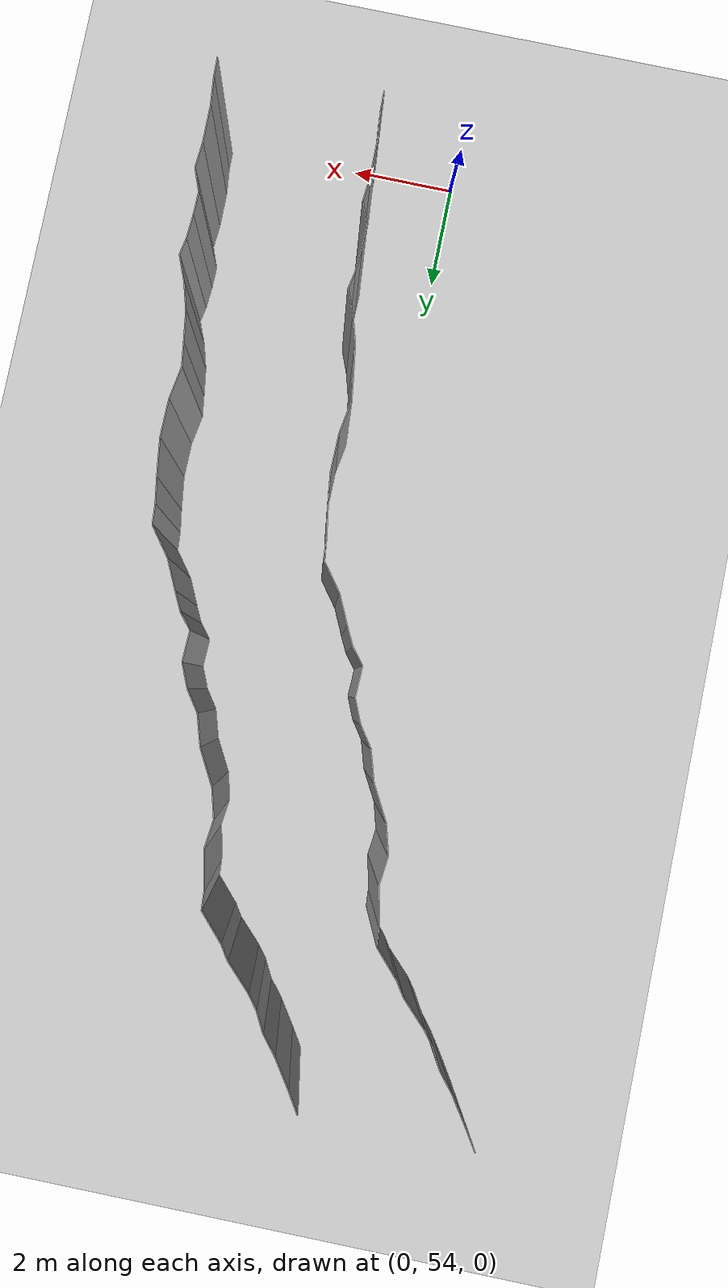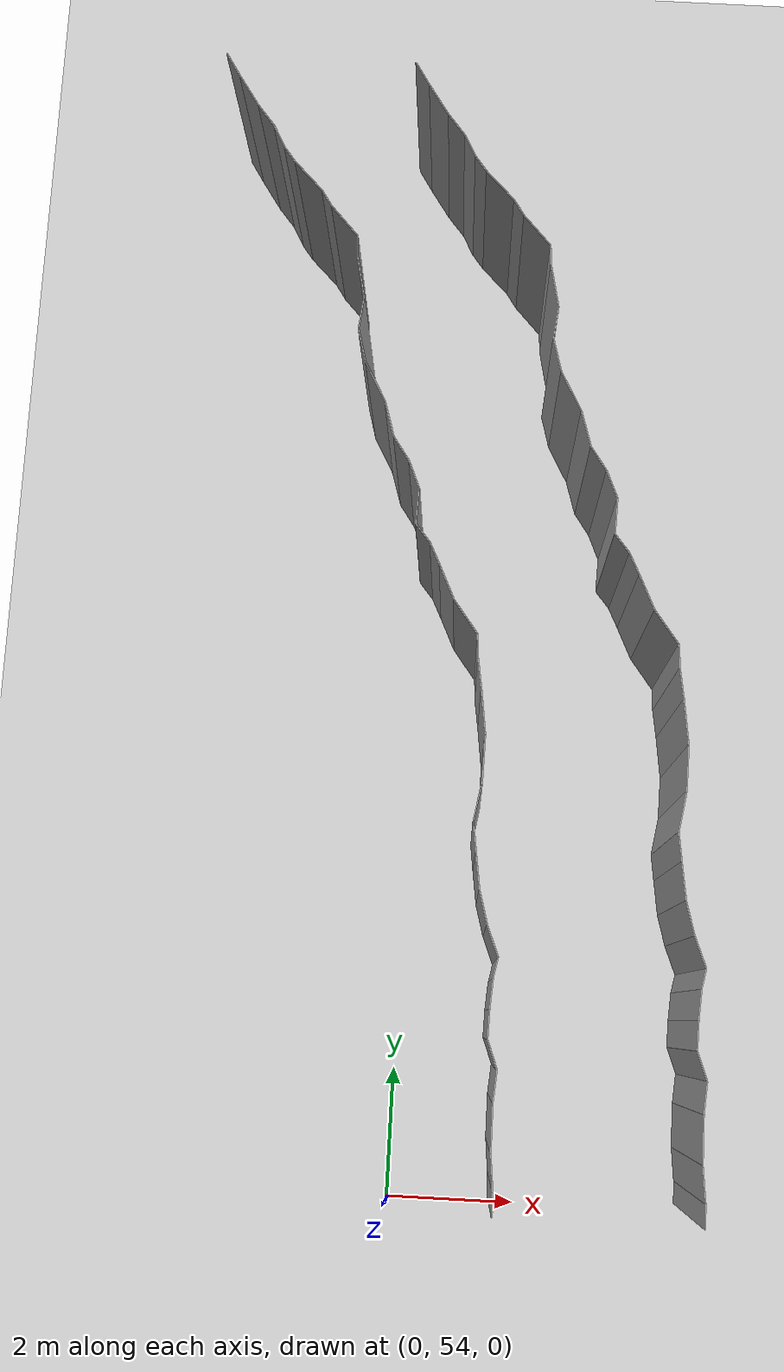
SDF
<sdf version="1.6">
 <world name="default">
  <model name="ground_plane">
   <static>1</static>
   <link name="link">
    <collision name="collision">
     <geometry><plane><normal>0 0 1</normal><size>200 200</size></plane></geometry>
     <surface><friction><ode><mu>100</mu><mu2>50</mu2></ode></friction></surface>
    </collision>
    <visual name="visual">
     <cast_shadows>0</cast_shadows>
     <geometry><plane><normal>0 0 1</normal><size>200 200</size></plane></geometry>
     <material>
      <script><uri>file://media/materials/scripts/gazebo.material</uri><name>Gazebo/Grey</name></script>
     </material>
    </visual>
   </link>
   <pose>0 100 0 0 -0 0</pose>
  </model>
  <model name="wall_224">
   <static>1</static>
   <pose>1.6036851124382525 54.291780807784306 2 0 0 0.021064245430940393</pose>
   <link name="link">
    <collision name="collision"><geometry><box><size>0.02 0.352681387087 4</size></box></geometry></collision>
    <visual name="visual">
     <material>
      <script><name>Gazebo/Grey</name><uri>file://media/materials/scripts/gazebo.material</uri></script>
     </material>
     <geometry><box><size>0.02 0.352681387087 4</size></box></geometry>
    </visual>
   </link>
  </model>
  <model name="wall_225">
   <static>1</static>
   <pose>4.603685112438253 54.291780807784306 2 0 0 0.021064245430940393</pose>
   <link name="link">
    <collision name="collision"><geometry><box><size>0.02 0.352681387087 4</size></box></geometry></collision>
    <visual name="visual">
     <material>
      <script><name>Gazebo/Grey</name><uri>file://media/materials/scripts/gazebo.material</uri></script>
     </material>
     <geometry><box><size>0.02 0.352681387087 4</size></box></geometry>
    </visual>
   </link>
  </model>
  <model name="wall_226">
   <static>1</static>
   <pose>1.5729926615800056 54.730234044295244 2 0 0 0.10254981150904317</pose>
   <link name="link">
    <collision name="collision"><geometry><box><size>0.02 0.527072366593 4</size></box></geometry></collision>
    <visual name="visual">
     <material>
      <script><name>Gazebo/Grey</name><uri>file://media/materials/scripts/gazebo.material</uri></script>
     </material>
     <geometry><box><size>0.02 0.527072366593 4</size></box></geometry>
    </visual>
   </link>
  </model>
  <model name="wall_227">
   <static>1</static>
   <pose>4.572992661580006 54.730234044295244 2 0 0 0.10254981150904317</pose>
   <link name="link">
    <collision name="collision"><geometry><box><size>0.02 0.527072366593 4</size></box></geometry></collision>
    <visual name="visual">
     <material>
      <script><name>Gazebo/Grey</name><uri>file://media/materials/scripts/gazebo.material</uri></script>
     </material>
     <geometry><box><size>0.02 0.527072366593 4</size></box></geometry>
    </visual>
   </link>
  </model>
  <model name="wall_228">
   <static>1</static>
   <pose>1.5440022272549807 55.34034198996418 2 0 0 0.00578282417452097</pose>
   <link name="link">
    <collision name="collision"><geometry><box><size>0.02 0.695924201688 4</size></box></geometry></collision>
    <visual name="visual">
     <material>
      <script><name>Gazebo/Grey</name><uri>file://media/materials/scripts/gazebo.material</uri></script>
     </material>
     <geometry><box><size>0.02 0.695924201688 4</size></box></geometry>
    </visual>
   </link>
  </model>
  <model name="wall_229">
   <static>1</static>
   <pose>4.544002227254981 55.34034198996418 2 0 0 0.00578282417452097</pose>
   <link name="link">
    <collision name="collision"><geometry><box><size>0.02 0.695924201688 4</size></box></geometry></collision>
    <visual name="visual">
     <material>
      <script><name>Gazebo/Grey</name><uri>file://media/materials/scripts/gazebo.material</uri></script>
     </material>
     <geometry><box><size>0.02 0.695924201688 4</size></box></geometry>
    </visual>
   </link>
  </model>
  <model name="wall_230">
   <static>1</static>
   <pose>1.5613001612901913 55.91948795631337 2 0 0 -0.08333160868633853</pose>
   <link name="link">
    <collision name="collision"><geometry><box><size>0.02 0.463989442926 4</size></box></geometry></collision>
    <visual name="visual">
     <material>
      <script><name>Gazebo/Grey</name><uri>file://media/materials/scripts/gazebo.material</uri></script>
     </material>
     <geometry><box><size>0.02 0.463989442926 4</size></box></geometry>
    </visual>
   </link>
  </model>
  <model name="wall_231">
   <static>1</static>
   <pose>4.561300161290191 55.91948795631337 2 0 0 -0.08333160868633853</pose>
   <link name="link">
    <collision name="collision"><geometry><box><size>0.02 0.463989442926 4</size></box></geometry></collision>
    <visual name="visual">
     <material>
      <script><name>Gazebo/Grey</name><uri>file://media/materials/scripts/gazebo.material</uri></script>
     </material>
     <geometry><box><size>0.02 0.463989442926 4</size></box></geometry>
    </visual>
   </link>
  </model>
  <model name="wall_232">
   <static>1</static>
   <pose>1.5024226999231554 56.35838612095182 2 0 0 0.36002329129159577</pose>
   <link name="link">
    <collision name="collision"><geometry><box><size>0.02 0.443874360545 4</size></box></geometry></collision>
    <visual name="visual">
     <material>
      <script><name>Gazebo/Grey</name><uri>file://media/materials/scripts/gazebo.material</uri></script>
     </material>
     <geometry><box><size>0.02 0.443874360545 4</size></box></geometry>
    </visual>
   </link>
  </model>
  <model name="wall_233">
   <static>1</static>
   <pose>4.502422699923155 56.35838612095182 2 0 0 0.36002329129159577</pose>
   <link name="link">
    <collision name="collision"><geometry><box><size>0.02 0.443874360545 4</size></box></geometry></collision>
    <visual name="visual">
     <material>
      <script><name>Gazebo/Grey</name><uri>file://media/materials/scripts/gazebo.material</uri></script>
     </material>
     <geometry><box><size>0.02 0.443874360545 4</size></box></geometry>
    </visual>
   </link>
  </model>
  <model name="wall_234">
   <static>1</static>
   <pose>1.4282405210456826 56.77945784781097 2 0 0 -0.018770517481670634</pose>
   <link name="link">
    <collision name="collision"><geometry><box><size>0.02 0.426801677445 4</size></box></geometry></collision>
    <visual name="visual">
     <material>
      <script><name>Gazebo/Grey</name><uri>file://media/materials/scripts/gazebo.material</uri></script>
     </material>
     <geometry><box><size>0.02 0.426801677445 4</size></box></geometry>
    </visual>
   </link>
  </model>
  <model name="wall_235">
   <static>1</static>
   <pose>4.428240521045683 56.77945784781097 2 0 0 -0.018770517481670634</pose>
   <link name="link">
    <collision name="collision"><geometry><box><size>0.02 0.426801677445 4</size></box></geometry></collision>
    <visual name="visual">
     <material>
      <script><name>Gazebo/Grey</name><uri>file://media/materials/scripts/gazebo.material</uri></script>
     </material>
     <geometry><box><size>0.02 0.426801677445 4</size></box></geometry>
    </visual>
   </link>
  </model>
  <model name="wall_236">
   <static>1</static>
   <pose>1.447591375973177 57.21405051822301 2 0 0 -0.06925347148266274</pose>
   <link name="link">
    <collision name="collision"><geometry><box><size>0.02 0.443521999534 4</size></box></geometry></collision>
    <visual name="visual">
     <material>
      <script><name>Gazebo/Grey</name><uri>file://media/materials/scripts/gazebo.material</uri></script>
     </material>
     <geometry><box><size>0.02 0.443521999534 4</size></box></geometry>
    </visual>
   </link>
  </model>
  <model name="wall_237">
   <static>1</static>
   <pose>4.447591375973177 57.21405051822301 2 0 0 -0.06925347148266274</pose>
   <link name="link">
    <collision name="collision"><geometry><box><size>0.02 0.443521999534 4</size></box></geometry></collision>
    <visual name="visual">
     <material>
      <script><name>Gazebo/Grey</name><uri>file://media/materials/scripts/gazebo.material</uri></script>
     </material>
     <geometry><box><size>0.02 0.443521999534 4</size></box></geometry>
    </visual>
   </link>
  </model>
  <model name="wall_238">
   <static>1</static>
   <pose>1.4923998792543727 57.583550651814825 2 0 0 -0.19615606663334026</pose>
   <link name="link">
    <collision name="collision"><geometry><box><size>0.02 0.302339378139 4</size></box></geometry></collision>
    <visual name="visual">
     <material>
      <script><name>Gazebo/Grey</name><uri>file://media/materials/scripts/gazebo.material</uri></script>
     </material>
     <geometry><box><size>0.02 0.302339378139 4</size></box></geometry>
    </visual>
   </link>
  </model>
  <model name="wall_239">
   <static>1</static>
   <pose>4.492399879254373 57.583550651814825 2 0 0 -0.19615606663334026</pose>
   <link name="link">
    <collision name="collision"><geometry><box><size>0.02 0.302339378139 4</size></box></geometry></collision>
    <visual name="visual">
     <material>
      <script><name>Gazebo/Grey</name><uri>file://media/materials/scripts/gazebo.material</uri></script>
     </material>
     <geometry><box><size>0.02 0.302339378139 4</size></box></geometry>
    </visual>
   </link>
  </model>
  <model name="wall_240">
   <static>1</static>
   <pose>1.431327580405416 57.960576197404286 2 0 0 0.37685850032647544</pose>
   <link name="link">
    <collision name="collision"><geometry><box><size>0.02 0.492038315494 4</size></box></geometry></collision>
    <visual name="visual">
     <material>
      <script><name>Gazebo/Grey</name><uri>file://media/materials/scripts/gazebo.material</uri></script>
     </material>
     <geometry><box><size>0.02 0.492038315494 4</size></box></geometry>
    </visual>
   </link>
  </model>
  <model name="wall_241">
   <static>1</static>
   <pose>4.431327580405416 57.960576197404286 2 0 0 0.37685850032647544</pose>
   <link name="link">
    <collision name="collision"><geometry><box><size>0.02 0.492038315494 4</size></box></geometry></collision>
    <visual name="visual">
     <material>
      <script><name>Gazebo/Grey</name><uri>file://media/materials/scripts/gazebo.material</uri></script>
     </material>
     <geometry><box><size>0.02 0.492038315494 4</size></box></geometry>
    </visual>
   </link>
  </model>
  <model name="wall_242">
   <static>1</static>
   <pose>1.2719482138683715 58.437649665939425 2 0 0 0.27044809774442985</pose>
   <link name="link">
    <collision name="collision"><geometry><box><size>0.02 0.515370316319 4</size></box></geometry></collision>
    <visual name="visual">
     <material>
      <script><name>Gazebo/Grey</name><uri>file://media/materials/scripts/gazebo.material</uri></script>
     </material>
     <geometry><box><size>0.02 0.515370316319 4</size></box></geometry>
    </visual>
   </link>
  </model>
  <model name="wall_243">
   <static>1</static>
   <pose>4.271948213868372 58.437649665939425 2 0 0 0.27044809774442985</pose>
   <link name="link">
    <collision name="collision"><geometry><box><size>0.02 0.515370316319 4</size></box></geometry></collision>
    <visual name="visual">
     <material>
      <script><name>Gazebo/Grey</name><uri>file://media/materials/scripts/gazebo.material</uri></script>
     </material>
     <geometry><box><size>0.02 0.515370316319 4</size></box></geometry>
    </visual>
   </link>
  </model>
  <model name="wall_244">
   <static>1</static>
   <pose>1.163088444770079 58.965737708286326 2 0 0 0.14206764125952334</pose>
   <link name="link">
    <collision name="collision"><geometry><box><size>0.02 0.565233346301 4</size></box></geometry></collision>
    <visual name="visual">
     <material>
      <script><name>Gazebo/Grey</name><uri>file://media/materials/scripts/gazebo.material</uri></script>
     </material>
     <geometry><box><size>0.02 0.565233346301 4</size></box></geometry>
    </visual>
   </link>
  </model>
  <model name="wall_245">
   <static>1</static>
   <pose>4.163088444770079 58.965737708286326 2 0 0 0.14206764125952334</pose>
   <link name="link">
    <collision name="collision"><geometry><box><size>0.02 0.565233346301 4</size></box></geometry></collision>
    <visual name="visual">
     <material>
      <script><name>Gazebo/Grey</name><uri>file://media/materials/scripts/gazebo.material</uri></script>
     </material>
     <geometry><box><size>0.02 0.565233346301 4</size></box></geometry>
    </visual>
   </link>
  </model>
  <model name="wall_246">
   <static>1</static>
   <pose>1.0943477685909149 59.458307182111994 2 0 0 0.134174462054127</pose>
   <link name="link">
    <collision name="collision"><geometry><box><size>0.02 0.429460069744 4</size></box></geometry></collision>
    <visual name="visual">
     <material>
      <script><name>Gazebo/Grey</name><uri>file://media/materials/scripts/gazebo.material</uri></script>
     </material>
     <geometry><box><size>0.02 0.429460069744 4</size></box></geometry>
    </visual>
   </link>
  </model>
  <model name="wall_247">
   <static>1</static>
   <pose>4.094347768590914 59.458307182111994 2 0 0 0.134174462054127</pose>
   <link name="link">
    <collision name="collision"><geometry><box><size>0.02 0.429460069744 4</size></box></geometry></collision>
    <visual name="visual">
     <material>
      <script><name>Gazebo/Grey</name><uri>file://media/materials/scripts/gazebo.material</uri></script>
     </material>
     <geometry><box><size>0.02 0.429460069744 4</size></box></geometry>
    </visual>
   </link>
  </model>
  <model name="wall_248">
   <static>1</static>
   <pose>1.1150822809851162 59.96949698283018 2 0 0 -0.16426099415334552</pose>
   <link name="link">
    <collision name="collision"><geometry><box><size>0.02 0.604922046296 4</size></box></geometry></collision>
    <visual name="visual">
     <material>
      <script><name>Gazebo/Grey</name><uri>file://media/materials/scripts/gazebo.material</uri></script>
     </material>
     <geometry><box><size>0.02 0.604922046296 4</size></box></geometry>
    </visual>
   </link>
  </model>
  <model name="wall_249">
   <static>1</static>
   <pose>4.115082280985116 59.96949698283018 2 0 0 -0.16426099415334552</pose>
   <link name="link">
    <collision name="collision"><geometry><box><size>0.02 0.604922046296 4</size></box></geometry></collision>
    <visual name="visual">
     <material>
      <script><name>Gazebo/Grey</name><uri>file://media/materials/scripts/gazebo.material</uri></script>
     </material>
     <geometry><box><size>0.02 0.604922046296 4</size></box></geometry>
    </visual>
   </link>
  </model>
  <model name="wall_250">
   <static>1</static>
   <pose>1.1694435651502437 60.61239419376507 2 0 0 -0.014227626195038102</pose>
   <link name="link">
    <collision name="collision"><geometry><box><size>0.02 0.689084690208 4</size></box></geometry></collision>
    <visual name="visual">
     <material>
      <script><name>Gazebo/Grey</name><uri>file://media/materials/scripts/gazebo.material</uri></script>
     </material>
     <geometry><box><size>0.02 0.689084690208 4</size></box></geometry>
    </visual>
   </link>
  </model>
  <model name="wall_251">
   <static>1</static>
   <pose>4.169443565150244 60.61239419376507 2 0 0 -0.014227626195038102</pose>
   <link name="link">
    <collision name="collision"><geometry><box><size>0.02 0.689084690208 4</size></box></geometry></collision>
    <visual name="visual">
     <material>
      <script><name>Gazebo/Grey</name><uri>file://media/materials/scripts/gazebo.material</uri></script>
     </material>
     <geometry><box><size>0.02 0.689084690208 4</size></box></geometry>
    </visual>
   </link>
  </model>
  <model name="wall_252">
   <static>1</static>
   <pose>1.128997551573161 61.29757632758696 2 0 0 0.13233400834321463</pose>
   <link name="link">
    <collision name="collision"><geometry><box><size>0.02 0.687359158554 4</size></box></geometry></collision>
    <visual name="visual">
     <material>
      <script><name>Gazebo/Grey</name><uri>file://media/materials/scripts/gazebo.material</uri></script>
     </material>
     <geometry><box><size>0.02 0.687359158554 4</size></box></geometry>
    </visual>
   </link>
  </model>
  <model name="wall_253">
   <static>1</static>
   <pose>4.1289975515731605 61.29757632758696 2 0 0 0.13233400834321463</pose>
   <link name="link">
    <collision name="collision"><geometry><box><size>0.02 0.687359158554 4</size></box></geometry></collision>
    <visual name="visual">
     <material>
      <script><name>Gazebo/Grey</name><uri>file://media/materials/scripts/gazebo.material</uri></script>
     </material>
     <geometry><box><size>0.02 0.687359158554 4</size></box></geometry>
    </visual>
   </link>
  </model>
  <model name="wall_254">
   <static>1</static>
   <pose>1.0468617305926178 61.87046841312174 2 0 0 0.1571146099904452</pose>
   <link name="link">
    <collision name="collision"><geometry><box><size>0.02 0.470226694819 4</size></box></geometry></collision>
    <visual name="visual">
     <material>
      <script><name>Gazebo/Grey</name><uri>file://media/materials/scripts/gazebo.material</uri></script>
     </material>
     <geometry><box><size>0.02 0.470226694819 4</size></box></geometry>
    </visual>
   </link>
  </model>
  <model name="wall_255">
   <static>1</static>
   <pose>4.046861730592617 61.87046841312174 2 0 0 0.1571146099904452</pose>
   <link name="link">
    <collision name="collision"><geometry><box><size>0.02 0.470226694819 4</size></box></geometry></collision>
    <visual name="visual">
     <material>
      <script><name>Gazebo/Grey</name><uri>file://media/materials/scripts/gazebo.material</uri></script>
     </material>
     <geometry><box><size>0.02 0.470226694819 4</size></box></geometry>
    </visual>
   </link>
  </model>
  <model name="wall_256">
   <static>1</static>
   <pose>0.9978432592809765 62.28245045118288 2 0 0 0.06793160702659297</pose>
   <link name="link">
    <collision name="collision"><geometry><box><size>0.02 0.360360383827 4</size></box></geometry></collision>
    <visual name="visual">
     <material>
      <script><name>Gazebo/Grey</name><uri>file://media/materials/scripts/gazebo.material</uri></script>
     </material>
     <geometry><box><size>0.02 0.360360383827 4</size></box></geometry>
    </visual>
   </link>
  </model>
  <model name="wall_257">
   <static>1</static>
   <pose>3.9978432592809767 62.28245045118288 2 0 0 0.06793160702659297</pose>
   <link name="link">
    <collision name="collision"><geometry><box><size>0.02 0.360360383827 4</size></box></geometry></collision>
    <visual name="visual">
     <material>
      <script><name>Gazebo/Grey</name><uri>file://media/materials/scripts/gazebo.material</uri></script>
     </material>
     <geometry><box><size>0.02 0.360360383827 4</size></box></geometry>
    </visual>
   </link>
  </model>
  <model name="wall_258">
   <static>1</static>
   <pose>0.7968223909805744 62.71456576751681 2 0 0 0.6423012477597594</pose>
   <link name="link">
    <collision name="collision"><geometry><box><size>0.02 0.630309999614 4</size></box></geometry></collision>
    <visual name="visual">
     <material>
      <script><name>Gazebo/Grey</name><uri>file://media/materials/scripts/gazebo.material</uri></script>
     </material>
     <geometry><box><size>0.02 0.630309999614 4</size></box></geometry>
    </visual>
   </link>
  </model>
  <model name="wall_259">
   <static>1</static>
   <pose>3.7968223909805743 62.71456576751681 2 0 0 0.6423012477597594</pose>
   <link name="link">
    <collision name="collision"><geometry><box><size>0.02 0.630309999614 4</size></box></geometry></collision>
    <visual name="visual">
     <material>
      <script><name>Gazebo/Grey</name><uri>file://media/materials/scripts/gazebo.material</uri></script>
     </material>
     <geometry><box><size>0.02 0.630309999614 4</size></box></geometry>
    </visual>
   </link>
  </model>
  <model name="wall_260">
   <static>1</static>
   <pose>0.4847457979228146 63.23148237218303 2 0 0 0.4360750193572401</pose>
   <link name="link">
    <collision name="collision"><geometry><box><size>0.02 0.583762327326 4</size></box></geometry></collision>
    <visual name="visual">
     <material>
      <script><name>Gazebo/Grey</name><uri>file://media/materials/scripts/gazebo.material</uri></script>
     </material>
     <geometry><box><size>0.02 0.583762327326 4</size></box></geometry>
    </visual>
   </link>
  </model>
  <model name="wall_261">
   <static>1</static>
   <pose>3.4847457979228147 63.23148237218303 2 0 0 0.4360750193572401</pose>
   <link name="link">
    <collision name="collision"><geometry><box><size>0.02 0.583762327326 4</size></box></geometry></collision>
    <visual name="visual">
     <material>
      <script><name>Gazebo/Grey</name><uri>file://media/materials/scripts/gazebo.material</uri></script>
     </material>
     <geometry><box><size>0.02 0.583762327326 4</size></box></geometry>
    </visual>
   </link>
  </model>
  <model name="wall_262">
   <static>1</static>
   <pose>0.282185419889282 63.65870016299742 2 0 0 0.453504991719024</pose>
   <link name="link">
    <collision name="collision"><geometry><box><size>0.02 0.361884101534 4</size></box></geometry></collision>
    <visual name="visual">
     <material>
      <script><name>Gazebo/Grey</name><uri>file://media/materials/scripts/gazebo.material</uri></script>
     </material>
     <geometry><box><size>0.02 0.361884101534 4</size></box></geometry>
    </visual>
   </link>
  </model>
  <model name="wall_263">
   <static>1</static>
   <pose>3.282185419889282 63.65870016299742 2 0 0 0.453504991719024</pose>
   <link name="link">
    <collision name="collision"><geometry><box><size>0.02 0.361884101534 4</size></box></geometry></collision>
    <visual name="visual">
     <material>
      <script><name>Gazebo/Grey</name><uri>file://media/materials/scripts/gazebo.material</uri></script>
     </material>
     <geometry><box><size>0.02 0.361884101534 4</size></box></geometry>
    </visual>
   </link>
  </model>
  <model name="wall_264">
   <static>1</static>
   <pose>0.08806002651344026 63.96243118173114 2 0 0 0.683274191471846</pose>
   <link name="link">
    <collision name="collision"><geometry><box><size>0.02 0.363835854012 4</size></box></geometry></collision>
    <visual name="visual">
     <material>
      <script><name>Gazebo/Grey</name><uri>file://media/materials/scripts/gazebo.material</uri></script>
     </material>
     <geometry><box><size>0.02 0.363835854012 4</size></box></geometry>
    </visual>
   </link>
  </model>
  <model name="wall_265">
   <static>1</static>
   <pose>3.0880600265134404 63.96243118173114 2 0 0 0.683274191471846</pose>
   <link name="link">
    <collision name="collision"><geometry><box><size>0.02 0.363835854012 4</size></box></geometry></collision>
    <visual name="visual">
     <material>
      <script><name>Gazebo/Grey</name><uri>file://media/materials/scripts/gazebo.material</uri></script>
     </material>
     <geometry><box><size>0.02 0.363835854012 4</size></box></geometry>
    </visual>
   </link>
  </model>
  <model name="wall_266">
   <static>1</static>
   <pose>-0.0179722534192258 64.38270662153751 2 0 0 -0.03157651726268434</pose>
   <link name="link">
    <collision name="collision"><geometry><box><size>0.02 0.558671117458 4</size></box></geometry></collision>
    <visual name="visual">
     <material>
      <script><name>Gazebo/Grey</name><uri>file://media/materials/scripts/gazebo.material</uri></script>
     </material>
     <geometry><box><size>0.02 0.558671117458 4</size></box></geometry>
    </visual>
   </link>
  </model>
  <model name="wall_267">
   <static>1</static>
   <pose>2.982027746580774 64.38270662153751 2 0 0 -0.03157651726268434</pose>
   <link name="link">
    <collision name="collision"><geometry><box><size>0.02 0.558671117458 4</size></box></geometry></collision>
    <visual name="visual">
     <material>
      <script><name>Gazebo/Grey</name><uri>file://media/materials/scripts/gazebo.material</uri></script>
     </material>
     <geometry><box><size>0.02 0.558671117458 4</size></box></geometry>
    </visual>
   </link>
  </model>
  <model name="wall_268">
   <static>1</static>
   <pose>-0.09906776676497372 64.87382081957423 2 0 0 0.40126852305886224</pose>
   <link name="link">
    <collision name="collision"><geometry><box><size>0.02 0.460407674719 4</size></box></geometry></collision>
    <visual name="visual">
     <material>
      <script><name>Gazebo/Grey</name><uri>file://media/materials/scripts/gazebo.material</uri></script>
     </material>
     <geometry><box><size>0.02 0.460407674719 4</size></box></geometry>
    </visual>
   </link>
  </model>
  <model name="wall_269">
   <static>1</static>
   <pose>2.9009322332350265 64.87382081957423 2 0 0 0.40126852305886224</pose>
   <link name="link">
    <collision name="collision"><geometry><box><size>0.02 0.460407674719 4</size></box></geometry></collision>
    <visual name="visual">
     <material>
      <script><name>Gazebo/Grey</name><uri>file://media/materials/scripts/gazebo.material</uri></script>
     </material>
     <geometry><box><size>0.02 0.460407674719 4</size></box></geometry>
    </visual>
   </link>
  </model>
  <model name="wall_270">
   <static>1</static>
   <pose>-0.3150659318614243 65.26831804297112 2 0 0 0.6043685131696127</pose>
   <link name="link">
    <collision name="collision"><geometry><box><size>0.02 0.443767086198 4</size></box></geometry></collision>
    <visual name="visual">
     <material>
      <script><name>Gazebo/Grey</name><uri>file://media/materials/scripts/gazebo.material</uri></script>
     </material>
     <geometry><box><size>0.02 0.443767086198 4</size></box></geometry>
    </visual>
   </link>
  </model>
  <model name="wall_271">
   <static>1</static>
   <pose>2.684934068138576 65.26831804297112 2 0 0 0.6043685131696127</pose>
   <link name="link">
    <collision name="collision"><geometry><box><size>0.02 0.443767086198 4</size></box></geometry></collision>
    <visual name="visual">
     <material>
      <script><name>Gazebo/Grey</name><uri>file://media/materials/scripts/gazebo.material</uri></script>
     </material>
     <geometry><box><size>0.02 0.443767086198 4</size></box></geometry>
    </visual>
   </link>
  </model>
  <model name="wall_272">
   <static>1</static>
   <pose>-0.5250092541256585 65.72974803222179 2 0 0 0.29212931819581583</pose>
   <link name="link">
    <collision name="collision"><geometry><box><size>0.02 0.582374887566 4</size></box></geometry></collision>
    <visual name="visual">
     <material>
      <script><name>Gazebo/Grey</name><uri>file://media/materials/scripts/gazebo.material</uri></script>
     </material>
     <geometry><box><size>0.02 0.582374887566 4</size></box></geometry>
    </visual>
   </link>
  </model>
  <model name="wall_273">
   <static>1</static>
   <pose>2.4749907458743414 65.72974803222179 2 0 0 0.29212931819581583</pose>
   <link name="link">
    <collision name="collision"><geometry><box><size>0.02 0.582374887566 4</size></box></geometry></collision>
    <visual name="visual">
     <material>
      <script><name>Gazebo/Grey</name><uri>file://media/materials/scripts/gazebo.material</uri></script>
     </material>
     <geometry><box><size>0.02 0.582374887566 4</size></box></geometry>
    </visual>
   </link>
  </model>
  <model name="wall_274">
   <static>1</static>
   <pose>-0.775642207863285 66.31467030144894 2 0 0 0.49890633801135675</pose>
   <link name="link">
    <collision name="collision"><geometry><box><size>0.02 0.697117406005 4</size></box></geometry></collision>
    <visual name="visual">
     <material>
      <script><name>Gazebo/Grey</name><uri>file://media/materials/scripts/gazebo.material</uri></script>
     </material>
     <geometry><box><size>0.02 0.697117406005 4</size></box></geometry>
    </visual>
   </link>
  </model>
  <model name="wall_275">
   <static>1</static>
   <pose>2.224357792136715 66.31467030144894 2 0 0 0.49890633801135675</pose>
   <link name="link">
    <collision name="collision"><geometry><box><size>0.02 0.697117406005 4</size></box></geometry></collision>
    <visual name="visual">
     <material>
      <script><name>Gazebo/Grey</name><uri>file://media/materials/scripts/gazebo.material</uri></script>
     </material>
     <geometry><box><size>0.02 0.697117406005 4</size></box></geometry>
    </visual>
   </link>
  </model>
  <model name="wall_276">
   <static>1</static>
   <pose>-1.013485608383997 66.8840941120549 2 0 0 0.26358796998530815</pose>
   <link name="link">
    <collision name="collision"><geometry><box><size>0.02 0.545546833216 4</size></box></geometry></collision>
    <visual name="visual">
     <material>
      <script><name>Gazebo/Grey</name><uri>file://media/materials/scripts/gazebo.material</uri></script>
     </material>
     <geometry><box><size>0.02 0.545546833216 4</size></box></geometry>
    </visual>
   </link>
  </model>
  <model name="wall_277">
   <static>1</static>
   <pose>1.986514391616003 66.8840941120549 2 0 0 0.26358796998530815</pose>
   <link name="link">
    <collision name="collision"><geometry><box><size>0.02 0.545546833216 4</size></box></geometry></collision>
    <visual name="visual">
     <material>
      <script><name>Gazebo/Grey</name><uri>file://media/materials/scripts/gazebo.material</uri></script>
     </material>
     <geometry><box><size>0.02 0.545546833216 4</size></box></geometry>
    </visual>
   </link>
  </model>
  <model name="wall_278">
   <static>1</static>
   <pose>-1.0560715714170286 67.40441430657447 2 0 0 -0.11039632624092555</pose>
   <link name="link">
    <collision name="collision"><geometry><box><size>0.02 0.51708374133 4</size></box></geometry></collision>
    <visual name="visual">
     <material>
      <script><name>Gazebo/Grey</name><uri>file://media/materials/scripts/gazebo.material</uri></script>
     </material>
     <geometry><box><size>0.02 0.51708374133 4</size></box></geometry>
    </visual>
   </link>
  </model>
  <model name="wall_279">
   <static>1</static>
   <pose>1.9439284285829714 67.40441430657447 2 0 0 -0.11039632624092555</pose>
   <link name="link">
    <collision name="collision"><geometry><box><size>0.02 0.51708374133 4</size></box></geometry></collision>
    <visual name="visual">
     <material>
      <script><name>Gazebo/Grey</name><uri>file://media/materials/scripts/gazebo.material</uri></script>
     </material>
     <geometry><box><size>0.02 0.51708374133 4</size></box></geometry>
    </visual>
   </link>
  </model>
  <model name="wall_280">
   <static>1</static>
   <pose>-1.1003621895586697 68.00247018361505 2 0 0 0.21020876922521117</pose>
   <link name="link">
    <collision name="collision"><geometry><box><size>0.02 0.697530226301 4</size></box></geometry></collision>
    <visual name="visual">
     <material>
      <script><name>Gazebo/Grey</name><uri>file://media/materials/scripts/gazebo.material</uri></script>
     </material>
     <geometry><box><size>0.02 0.697530226301 4</size></box></geometry>
    </visual>
   </link>
  </model>
  <model name="wall_281">
   <static>1</static>
   <pose>1.8996378104413303 68.00247018361505 2 0 0 0.21020876922521117</pose>
   <link name="link">
    <collision name="collision"><geometry><box><size>0.02 0.697530226301 4</size></box></geometry></collision>
    <visual name="visual">
     <material>
      <script><name>Gazebo/Grey</name><uri>file://media/materials/scripts/gazebo.material</uri></script>
     </material>
     <geometry><box><size>0.02 0.697530226301 4</size></box></geometry>
    </visual>
   </link>
  </model>
  <model name="wall_282">
   <static>1</static>
   <pose>-1.1835353057215259 68.50228440211508 2 0 0 0.06541779899231909</pose>
   <link name="link">
    <collision name="collision"><geometry><box><size>0.02 0.318133163982 4</size></box></geometry></collision>
    <visual name="visual">
     <material>
      <script><name>Gazebo/Grey</name><uri>file://media/materials/scripts/gazebo.material</uri></script>
     </material>
     <geometry><box><size>0.02 0.318133163982 4</size></box></geometry>
    </visual>
   </link>
  </model>
  <model name="wall_283">
   <static>1</static>
   <pose>1.8164646942784741 68.50228440211508 2 0 0 0.06541779899231909</pose>
   <link name="link">
    <collision name="collision"><geometry><box><size>0.02 0.318133163982 4</size></box></geometry></collision>
    <visual name="visual">
     <material>
      <script><name>Gazebo/Grey</name><uri>file://media/materials/scripts/gazebo.material</uri></script>
     </material>
     <geometry><box><size>0.02 0.318133163982 4</size></box></geometry>
    </visual>
   </link>
  </model>
  <model name="wall_284">
   <static>1</static>
   <pose>-1.410801197353151 68.89681512942295 2 0 0 0.7435890212893833</pose>
   <link name="link">
    <collision name="collision"><geometry><box><size>0.02 0.640734679215 4</size></box></geometry></collision>
    <visual name="visual">
     <material>
      <script><name>Gazebo/Grey</name><uri>file://media/materials/scripts/gazebo.material</uri></script>
     </material>
     <geometry><box><size>0.02 0.640734679215 4</size></box></geometry>
    </visual>
   </link>
  </model>
  <model name="wall_285">
   <static>1</static>
   <pose>1.589198802646849 68.89681512942295 2 0 0 0.7435890212893833</pose>
   <link name="link">
    <collision name="collision"><geometry><box><size>0.02 0.640734679215 4</size></box></geometry></collision>
    <visual name="visual">
     <material>
      <script><name>Gazebo/Grey</name><uri>file://media/materials/scripts/gazebo.material</uri></script>
     </material>
     <geometry><box><size>0.02 0.640734679215 4</size></box></geometry>
    </visual>
   </link>
  </model>
  <model name="wall_286">
   <static>1</static>
   <pose>-1.7109580610787283 69.25828140174877 2 0 0 0.5853244343070132</pose>
   <link name="link">
    <collision name="collision"><geometry><box><size>0.02 0.301516324416 4</size></box></geometry></collision>
    <visual name="visual">
     <material>
      <script><name>Gazebo/Grey</name><uri>file://media/materials/scripts/gazebo.material</uri></script>
     </material>
     <geometry><box><size>0.02 0.301516324416 4</size></box></geometry>
    </visual>
   </link>
  </model>
  <model name="wall_287">
   <static>1</static>
   <pose>1.2890419389212717 69.25828140174877 2 0 0 0.5853244343070132</pose>
   <link name="link">
    <collision name="collision"><geometry><box><size>0.02 0.301516324416 4</size></box></geometry></collision>
    <visual name="visual">
     <material>
      <script><name>Gazebo/Grey</name><uri>file://media/materials/scripts/gazebo.material</uri></script>
     </material>
     <geometry><box><size>0.02 0.301516324416 4</size></box></geometry>
    </visual>
   </link>
  </model>
  <model name="wall_288">
   <static>1</static>
   <pose>-2.0200541649952255 69.61141717496672 2 0 0 0.7817202815796735</pose>
   <link name="link">
    <collision name="collision"><geometry><box><size>0.02 0.641039982781 4</size></box></geometry></collision>
    <visual name="visual">
     <material>
      <script><name>Gazebo/Grey</name><uri>file://media/materials/scripts/gazebo.material</uri></script>
     </material>
     <geometry><box><size>0.02 0.641039982781 4</size></box></geometry>
    </visual>
   </link>
  </model>
  <model name="wall_289">
   <static>1</static>
   <pose>0.9799458350047745 69.61141717496672 2 0 0 0.7817202815796735</pose>
   <link name="link">
    <collision name="collision"><geometry><box><size>0.02 0.641039982781 4</size></box></geometry></collision>
    <visual name="visual">
     <material>
      <script><name>Gazebo/Grey</name><uri>file://media/materials/scripts/gazebo.material</uri></script>
     </material>
     <geometry><box><size>0.02 0.641039982781 4</size></box></geometry>
    </visual>
   </link>
  </model>
  <model name="wall_290">
   <static>1</static>
   <pose>-2.338451959367425 69.95914162822906 2 0 0 0.6561687549440011</pose>
   <link name="link">
    <collision name="collision"><geometry><box><size>0.02 0.303534493744 4</size></box></geometry></collision>
    <visual name="visual">
     <material>
      <script><name>Gazebo/Grey</name><uri>file://media/materials/scripts/gazebo.material</uri></script>
     </material>
     <geometry><box><size>0.02 0.303534493744 4</size></box></geometry>
    </visual>
   </link>
  </model>
  <model name="wall_291">
   <static>1</static>
   <pose>0.6615480406325749 69.95914162822906 2 0 0 0.6561687549440011</pose>
   <link name="link">
    <collision name="collision"><geometry><box><size>0.02 0.303534493744 4</size></box></geometry></collision>
    <visual name="visual">
     <material>
      <script><name>Gazebo/Grey</name><uri>file://media/materials/scripts/gazebo.material</uri></script>
     </material>
     <geometry><box><size>0.02 0.303534493744 4</size></box></geometry>
    </visual>
   </link>
  </model>
  <model name="wall_292">
   <static>1</static>
   <pose>-2.523782610535197 70.25383439356526 2 0 0 0.48863436293775675</pose>
   <link name="link">
    <collision name="collision"><geometry><box><size>0.02 0.39512387128 4</size></box></geometry></collision>
    <visual name="visual">
     <material>
      <script><name>Gazebo/Grey</name><uri>file://media/materials/scripts/gazebo.material</uri></script>
     </material>
     <geometry><box><size>0.02 0.39512387128 4</size></box></geometry>
    </visual>
   </link>
  </model>
  <model name="wall_293">
   <static>1</static>
   <pose>0.4762173894648032 70.25383439356526 2 0 0 0.48863436293775675</pose>
   <link name="link">
    <collision name="collision"><geometry><box><size>0.02 0.39512387128 4</size></box></geometry></collision>
    <visual name="visual">
     <material>
      <script><name>Gazebo/Grey</name><uri>file://media/materials/scripts/gazebo.material</uri></script>
     </material>
     <geometry><box><size>0.02 0.39512387128 4</size></box></geometry>
    </visual>
   </link>
  </model>
  <model name="wall_294">
   <static>1</static>
   <pose>-2.752301520821793 70.59311513922378 2 0 0 0.689032447875536</pose>
   <link name="link">
    <collision name="collision"><geometry><box><size>0.02 0.427119474367 4</size></box></geometry></collision>
    <visual name="visual">
     <material>
      <script><name>Gazebo/Grey</name><uri>file://media/materials/scripts/gazebo.material</uri></script>
     </material>
     <geometry><box><size>0.02 0.427119474367 4</size></box></geometry>
    </visual>
   </link>
  </model>
  <model name="wall_295">
   <static>1</static>
   <pose>0.2476984791782071 70.59311513922378 2 0 0 0.689032447875536</pose>
   <link name="link">
    <collision name="collision"><geometry><box><size>0.02 0.427119474367 4</size></box></geometry></collision>
    <visual name="visual">
     <material>
      <script><name>Gazebo/Grey</name><uri>file://media/materials/scripts/gazebo.material</uri></script>
     </material>
     <geometry><box><size>0.02 0.427119474367 4</size></box></geometry>
    </visual>
   </link>
  </model>
  <model name="wall_296">
   <static>1</static>
   <pose>-3.0523456443426826 71.00174126936759 2 0 0 0.5929269720465877</pose>
   <link name="link">
    <collision name="collision"><geometry><box><size>0.02 0.587929663238 4</size></box></geometry></collision>
    <visual name="visual">
     <material>
      <script><name>Gazebo/Grey</name><uri>file://media/materials/scripts/gazebo.material</uri></script>
     </material>
     <geometry><box><size>0.02 0.587929663238 4</size></box></geometry>
    </visual>
   </link>
  </model>
  <model name="wall_297">
   <static>1</static>
   <pose>-0.05234564434268263 71.00174126936759 2 0 0 0.5929269720465877</pose>
   <link name="link">
    <collision name="collision"><geometry><box><size>0.02 0.587929663238 4</size></box></geometry></collision>
    <visual name="visual">
     <material>
      <script><name>Gazebo/Grey</name><uri>file://media/materials/scripts/gazebo.material</uri></script>
     </material>
     <geometry><box><size>0.02 0.587929663238 4</size></box></geometry>
    </visual>
   </link>
  </model>
  <model name="wall_298">
   <static>1</static>
   <pose>-3.334652543027506 71.43171681802694 2 0 0 0.5650408187473365</pose>
   <link name="link">
    <collision name="collision"><geometry><box><size>0.02 0.440907640803 4</size></box></geometry></collision>
    <visual name="visual">
     <material>
      <script><name>Gazebo/Grey</name><uri>file://media/materials/scripts/gazebo.material</uri></script>
     </material>
     <geometry><box><size>0.02 0.440907640803 4</size></box></geometry>
    </visual>
   </link>
  </model>
  <model name="wall_299">
   <static>1</static>
   <pose>-0.3346525430275058 71.43171681802694 2 0 0 0.5650408187473365</pose>
   <link name="link">
    <collision name="collision"><geometry><box><size>0.02 0.440907640803 4</size></box></geometry></collision>
    <visual name="visual">
     <material>
      <script><name>Gazebo/Grey</name><uri>file://media/materials/scripts/gazebo.material</uri></script>
     </material>
     <geometry><box><size>0.02 0.440907640803 4</size></box></geometry>
    </visual>
   </link>
  </model>
 </world>
</sdf>
